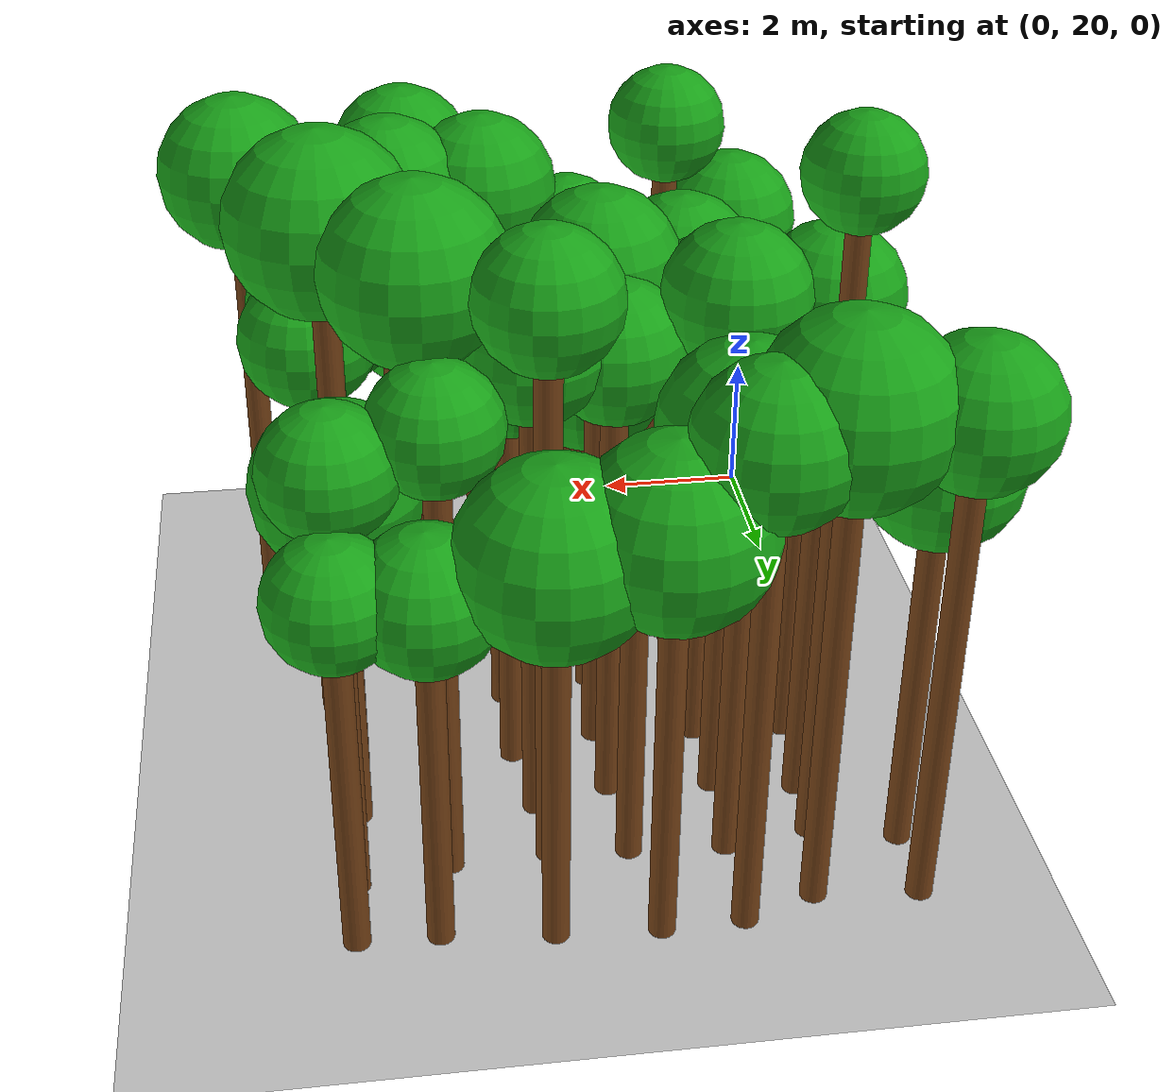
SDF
<sdf version="1.6">
 <world name="forest_world">
  <include><uri>model://sun</uri></include>
  <include><uri>model://ground_plane</uri></include>
  <model name="tree_1520_trunk">
   <static>true</static>
   <pose>-0.25 23.83 2.27 0 0 0</pose>
   <link name="link">
    <collision name="collision">
     <geometry><cylinder><radius>0.16</radius><length>4.54</length></cylinder></geometry>
    </collision>
    <visual name="visual">
     <geometry><cylinder><radius>0.16</radius><length>4.54</length></cylinder></geometry>
     <material><ambient>0.35 0.20 0.05 1</ambient><diffuse>0.45 0.25 0.08 1</diffuse></material>
    </visual>
   </link>
  </model>
  <model name="tree_1520_leaf">
   <static>true</static>
   <pose>-0.25 23.83 5.12 0 0 0</pose>
   <link name="link">
    <collision name="collision"><geometry><sphere><radius>0.97</radius></sphere></geometry></collision>
    <visual name="visual">
     <geometry><sphere><radius>0.97</radius></sphere></geometry>
     <material><ambient>0.05 0.45 0.05 1</ambient><diffuse>0.10 0.65 0.10 1</diffuse></material>
    </visual>
   </link>
  </model>
  <model name="tree_1521_trunk">
   <static>true</static>
   <pose>-0.15 25.05 3.43 0 0 0</pose>
   <link name="link">
    <collision name="collision">
     <geometry><cylinder><radius>0.16</radius><length>6.85</length></cylinder></geometry>
    </collision>
    <visual name="visual">
     <geometry><cylinder><radius>0.16</radius><length>6.85</length></cylinder></geometry>
     <material><ambient>0.35 0.20 0.05 1</ambient><diffuse>0.45 0.25 0.08 1</diffuse></material>
    </visual>
   </link>
  </model>
  <model name="tree_1521_leaf">
   <static>true</static>
   <pose>-0.15 25.05 7.30 0 0 0</pose>
   <link name="link">
    <collision name="collision"><geometry><sphere><radius>0.75</radius></sphere></geometry></collision>
    <visual name="visual">
     <geometry><sphere><radius>0.75</radius></sphere></geometry>
     <material><ambient>0.05 0.45 0.05 1</ambient><diffuse>0.10 0.65 0.10 1</diffuse></material>
    </visual>
   </link>
  </model>
  <model name="tree_1524_trunk">
   <static>true</static>
   <pose>-0.28 28.40 2.36 0 0 0</pose>
   <link name="link">
    <collision name="collision">
     <geometry><cylinder><radius>0.16</radius><length>4.73</length></cylinder></geometry>
    </collision>
    <visual name="visual">
     <geometry><cylinder><radius>0.16</radius><length>4.73</length></cylinder></geometry>
     <material><ambient>0.35 0.20 0.05 1</ambient><diffuse>0.45 0.25 0.08 1</diffuse></material>
    </visual>
   </link>
  </model>
  <model name="tree_1524_leaf">
   <static>true</static>
   <pose>-0.28 28.40 5.29 0 0 0</pose>
   <link name="link">
    <collision name="collision"><geometry><sphere><radius>0.94</radius></sphere></geometry></collision>
    <visual name="visual">
     <geometry><sphere><radius>0.94</radius></sphere></geometry>
     <material><ambient>0.05 0.45 0.05 1</ambient><diffuse>0.10 0.65 0.10 1</diffuse></material>
    </visual>
   </link>
  </model>
  <model name="tree_1525_trunk">
   <static>true</static>
   <pose>-0.27 29.36 2.99 0 0 0</pose>
   <link name="link">
    <collision name="collision">
     <geometry><cylinder><radius>0.16</radius><length>5.98</length></cylinder></geometry>
    </collision>
    <visual name="visual">
     <geometry><cylinder><radius>0.16</radius><length>5.98</length></cylinder></geometry>
     <material><ambient>0.35 0.20 0.05 1</ambient><diffuse>0.45 0.25 0.08 1</diffuse></material>
    </visual>
   </link>
  </model>
  <model name="tree_1525_leaf">
   <static>true</static>
   <pose>-0.27 29.36 6.50 0 0 0</pose>
   <link name="link">
    <collision name="collision"><geometry><sphere><radius>0.87</radius></sphere></geometry></collision>
    <visual name="visual">
     <geometry><sphere><radius>0.87</radius></sphere></geometry>
     <material><ambient>0.05 0.45 0.05 1</ambient><diffuse>0.10 0.65 0.10 1</diffuse></material>
    </visual>
   </link>
  </model>
  <model name="tree_1569_trunk">
   <static>true</static>
   <pose>0.92 22.74 2.63 0 0 0</pose>
   <link name="link">
    <collision name="collision">
     <geometry><cylinder><radius>0.16</radius><length>5.27</length></cylinder></geometry>
    </collision>
    <visual name="visual">
     <geometry><cylinder><radius>0.16</radius><length>5.27</length></cylinder></geometry>
     <material><ambient>0.35 0.20 0.05 1</ambient><diffuse>0.45 0.25 0.08 1</diffuse></material>
    </visual>
   </link>
  </model>
  <model name="tree_1569_leaf">
   <static>true</static>
   <pose>0.92 22.74 5.79 0 0 0</pose>
   <link name="link">
    <collision name="collision"><geometry><sphere><radius>0.87</radius></sphere></geometry></collision>
    <visual name="visual">
     <geometry><sphere><radius>0.87</radius></sphere></geometry>
     <material><ambient>0.05 0.45 0.05 1</ambient><diffuse>0.10 0.65 0.10 1</diffuse></material>
    </visual>
   </link>
  </model>
  <model name="tree_1570_trunk">
   <static>true</static>
   <pose>0.80 23.72 2.26 0 0 0</pose>
   <link name="link">
    <collision name="collision">
     <geometry><cylinder><radius>0.16</radius><length>4.52</length></cylinder></geometry>
    </collision>
    <visual name="visual">
     <geometry><cylinder><radius>0.16</radius><length>4.52</length></cylinder></geometry>
     <material><ambient>0.35 0.20 0.05 1</ambient><diffuse>0.45 0.25 0.08 1</diffuse></material>
    </visual>
   </link>
  </model>
  <model name="tree_1570_leaf">
   <static>true</static>
   <pose>0.80 23.72 4.98 0 0 0</pose>
   <link name="link">
    <collision name="collision"><geometry><sphere><radius>0.77</radius></sphere></geometry></collision>
    <visual name="visual">
     <geometry><sphere><radius>0.77</radius></sphere></geometry>
     <material><ambient>0.05 0.45 0.05 1</ambient><diffuse>0.10 0.65 0.10 1</diffuse></material>
    </visual>
   </link>
  </model>
  <model name="tree_1571_trunk">
   <static>true</static>
   <pose>0.74 25.06 2.15 0 0 0</pose>
   <link name="link">
    <collision name="collision">
     <geometry><cylinder><radius>0.16</radius><length>4.30</length></cylinder></geometry>
    </collision>
    <visual name="visual">
     <geometry><cylinder><radius>0.16</radius><length>4.30</length></cylinder></geometry>
     <material><ambient>0.35 0.20 0.05 1</ambient><diffuse>0.45 0.25 0.08 1</diffuse></material>
    </visual>
   </link>
  </model>
  <model name="tree_1571_leaf">
   <static>true</static>
   <pose>0.74 25.06 4.75 0 0 0</pose>
   <link name="link">
    <collision name="collision"><geometry><sphere><radius>0.75</radius></sphere></geometry></collision>
    <visual name="visual">
     <geometry><sphere><radius>0.75</radius></sphere></geometry>
     <material><ambient>0.05 0.45 0.05 1</ambient><diffuse>0.10 0.65 0.10 1</diffuse></material>
    </visual>
   </link>
  </model>
  <model name="tree_1572_trunk">
   <static>true</static>
   <pose>0.65 26.18 2.03 0 0 0</pose>
   <link name="link">
    <collision name="collision">
     <geometry><cylinder><radius>0.16</radius><length>4.07</length></cylinder></geometry>
    </collision>
    <visual name="visual">
     <geometry><cylinder><radius>0.16</radius><length>4.07</length></cylinder></geometry>
     <material><ambient>0.35 0.20 0.05 1</ambient><diffuse>0.45 0.25 0.08 1</diffuse></material>
    </visual>
   </link>
  </model>
  <model name="tree_1572_leaf">
   <static>true</static>
   <pose>0.65 26.18 4.58 0 0 0</pose>
   <link name="link">
    <collision name="collision"><geometry><sphere><radius>0.85</radius></sphere></geometry></collision>
    <visual name="visual">
     <geometry><sphere><radius>0.85</radius></sphere></geometry>
     <material><ambient>0.05 0.45 0.05 1</ambient><diffuse>0.10 0.65 0.10 1</diffuse></material>
    </visual>
   </link>
  </model>
  <model name="tree_1573_trunk">
   <static>true</static>
   <pose>0.75 27.35 2.36 0 0 0</pose>
   <link name="link">
    <collision name="collision">
     <geometry><cylinder><radius>0.16</radius><length>4.72</length></cylinder></geometry>
    </collision>
    <visual name="visual">
     <geometry><cylinder><radius>0.16</radius><length>4.72</length></cylinder></geometry>
     <material><ambient>0.35 0.20 0.05 1</ambient><diffuse>0.45 0.25 0.08 1</diffuse></material>
    </visual>
   </link>
  </model>
  <model name="tree_1573_leaf">
   <static>true</static>
   <pose>0.75 27.35 5.25 0 0 0</pose>
   <link name="link">
    <collision name="collision"><geometry><sphere><radius>0.88</radius></sphere></geometry></collision>
    <visual name="visual">
     <geometry><sphere><radius>0.88</radius></sphere></geometry>
     <material><ambient>0.05 0.45 0.05 1</ambient><diffuse>0.10 0.65 0.10 1</diffuse></material>
    </visual>
   </link>
  </model>
  <model name="tree_1574_trunk">
   <static>true</static>
   <pose>0.77 28.15 2.62 0 0 0</pose>
   <link name="link">
    <collision name="collision">
     <geometry><cylinder><radius>0.16</radius><length>5.24</length></cylinder></geometry>
    </collision>
    <visual name="visual">
     <geometry><cylinder><radius>0.16</radius><length>5.24</length></cylinder></geometry>
     <material><ambient>0.35 0.20 0.05 1</ambient><diffuse>0.45 0.25 0.08 1</diffuse></material>
    </visual>
   </link>
  </model>
  <model name="tree_1574_leaf">
   <static>true</static>
   <pose>0.77 28.15 5.72 0 0 0</pose>
   <link name="link">
    <collision name="collision"><geometry><sphere><radius>0.81</radius></sphere></geometry></collision>
    <visual name="visual">
     <geometry><sphere><radius>0.81</radius></sphere></geometry>
     <material><ambient>0.05 0.45 0.05 1</ambient><diffuse>0.10 0.65 0.10 1</diffuse></material>
    </visual>
   </link>
  </model>
  <model name="tree_1575_trunk">
   <static>true</static>
   <pose>0.98 29.25 2.96 0 0 0</pose>
   <link name="link">
    <collision name="collision">
     <geometry><cylinder><radius>0.16</radius><length>5.91</length></cylinder></geometry>
    </collision>
    <visual name="visual">
     <geometry><cylinder><radius>0.16</radius><length>5.91</length></cylinder></geometry>
     <material><ambient>0.35 0.20 0.05 1</ambient><diffuse>0.45 0.25 0.08 1</diffuse></material>
    </visual>
   </link>
  </model>
  <model name="tree_1575_leaf">
   <static>true</static>
   <pose>0.98 29.25 6.57 0 0 0</pose>
   <link name="link">
    <collision name="collision"><geometry><sphere><radius>1.10</radius></sphere></geometry></collision>
    <visual name="visual">
     <geometry><sphere><radius>1.10</radius></sphere></geometry>
     <material><ambient>0.05 0.45 0.05 1</ambient><diffuse>0.10 0.65 0.10 1</diffuse></material>
    </visual>
   </link>
  </model>
  <model name="tree_1620_trunk">
   <static>true</static>
   <pose>1.79 22.81 3.34 0 0 0</pose>
   <link name="link">
    <collision name="collision">
     <geometry><cylinder><radius>0.16</radius><length>6.69</length></cylinder></geometry>
    </collision>
    <visual name="visual">
     <geometry><cylinder><radius>0.16</radius><length>6.69</length></cylinder></geometry>
     <material><ambient>0.35 0.20 0.05 1</ambient><diffuse>0.45 0.25 0.08 1</diffuse></material>
    </visual>
   </link>
  </model>
  <model name="tree_1620_leaf">
   <static>true</static>
   <pose>1.79 22.81 7.13 0 0 0</pose>
   <link name="link">
    <collision name="collision"><geometry><sphere><radius>0.74</radius></sphere></geometry></collision>
    <visual name="visual">
     <geometry><sphere><radius>0.74</radius></sphere></geometry>
     <material><ambient>0.05 0.45 0.05 1</ambient><diffuse>0.10 0.65 0.10 1</diffuse></material>
    </visual>
   </link>
  </model>
  <model name="tree_1621_trunk">
   <static>true</static>
   <pose>1.77 24.03 2.60 0 0 0</pose>
   <link name="link">
    <collision name="collision">
     <geometry><cylinder><radius>0.16</radius><length>5.20</length></cylinder></geometry>
    </collision>
    <visual name="visual">
     <geometry><cylinder><radius>0.16</radius><length>5.20</length></cylinder></geometry>
     <material><ambient>0.35 0.20 0.05 1</ambient><diffuse>0.45 0.25 0.08 1</diffuse></material>
    </visual>
   </link>
  </model>
  <model name="tree_1621_leaf">
   <static>true</static>
   <pose>1.77 24.03 5.75 0 0 0</pose>
   <link name="link">
    <collision name="collision"><geometry><sphere><radius>0.93</radius></sphere></geometry></collision>
    <visual name="visual">
     <geometry><sphere><radius>0.93</radius></sphere></geometry>
     <material><ambient>0.05 0.45 0.05 1</ambient><diffuse>0.10 0.65 0.10 1</diffuse></material>
    </visual>
   </link>
  </model>
  <model name="tree_1622_trunk">
   <static>true</static>
   <pose>1.85 24.83 2.44 0 0 0</pose>
   <link name="link">
    <collision name="collision">
     <geometry><cylinder><radius>0.16</radius><length>4.88</length></cylinder></geometry>
    </collision>
    <visual name="visual">
     <geometry><cylinder><radius>0.16</radius><length>4.88</length></cylinder></geometry>
     <material><ambient>0.35 0.20 0.05 1</ambient><diffuse>0.45 0.25 0.08 1</diffuse></material>
    </visual>
   </link>
  </model>
  <model name="tree_1622_leaf">
   <static>true</static>
   <pose>1.85 24.83 5.46 0 0 0</pose>
   <link name="link">
    <collision name="collision"><geometry><sphere><radius>0.96</radius></sphere></geometry></collision>
    <visual name="visual">
     <geometry><sphere><radius>0.96</radius></sphere></geometry>
     <material><ambient>0.05 0.45 0.05 1</ambient><diffuse>0.10 0.65 0.10 1</diffuse></material>
    </visual>
   </link>
  </model>
  <model name="tree_1623_trunk">
   <static>true</static>
   <pose>1.82 26.11 2.84 0 0 0</pose>
   <link name="link">
    <collision name="collision">
     <geometry><cylinder><radius>0.16</radius><length>5.68</length></cylinder></geometry>
    </collision>
    <visual name="visual">
     <geometry><cylinder><radius>0.16</radius><length>5.68</length></cylinder></geometry>
     <material><ambient>0.35 0.20 0.05 1</ambient><diffuse>0.45 0.25 0.08 1</diffuse></material>
    </visual>
   </link>
  </model>
  <model name="tree_1623_leaf">
   <static>true</static>
   <pose>1.82 26.11 6.19 0 0 0</pose>
   <link name="link">
    <collision name="collision"><geometry><sphere><radius>0.86</radius></sphere></geometry></collision>
    <visual name="visual">
     <geometry><sphere><radius>0.86</radius></sphere></geometry>
     <material><ambient>0.05 0.45 0.05 1</ambient><diffuse>0.10 0.65 0.10 1</diffuse></material>
    </visual>
   </link>
  </model>
  <model name="tree_1624_trunk">
   <static>true</static>
   <pose>1.79 27.16 3.18 0 0 0</pose>
   <link name="link">
    <collision name="collision">
     <geometry><cylinder><radius>0.16</radius><length>6.36</length></cylinder></geometry>
    </collision>
    <visual name="visual">
     <geometry><cylinder><radius>0.16</radius><length>6.36</length></cylinder></geometry>
     <material><ambient>0.35 0.20 0.05 1</ambient><diffuse>0.45 0.25 0.08 1</diffuse></material>
    </visual>
   </link>
  </model>
  <model name="tree_1624_leaf">
   <static>true</static>
   <pose>1.79 27.16 6.86 0 0 0</pose>
   <link name="link">
    <collision name="collision"><geometry><sphere><radius>0.84</radius></sphere></geometry></collision>
    <visual name="visual">
     <geometry><sphere><radius>0.84</radius></sphere></geometry>
     <material><ambient>0.05 0.45 0.05 1</ambient><diffuse>0.10 0.65 0.10 1</diffuse></material>
    </visual>
   </link>
  </model>
  <model name="tree_1625_trunk">
   <static>true</static>
   <pose>1.84 28.31 2.63 0 0 0</pose>
   <link name="link">
    <collision name="collision">
     <geometry><cylinder><radius>0.16</radius><length>5.26</length></cylinder></geometry>
    </collision>
    <visual name="visual">
     <geometry><cylinder><radius>0.16</radius><length>5.26</length></cylinder></geometry>
     <material><ambient>0.35 0.20 0.05 1</ambient><diffuse>0.45 0.25 0.08 1</diffuse></material>
    </visual>
   </link>
  </model>
  <model name="tree_1625_leaf">
   <static>true</static>
   <pose>1.84 28.31 5.87 0 0 0</pose>
   <link name="link">
    <collision name="collision"><geometry><sphere><radius>1.03</radius></sphere></geometry></collision>
    <visual name="visual">
     <geometry><sphere><radius>1.03</radius></sphere></geometry>
     <material><ambient>0.05 0.45 0.05 1</ambient><diffuse>0.10 0.65 0.10 1</diffuse></material>
    </visual>
   </link>
  </model>
  <model name="tree_1626_trunk">
   <static>true</static>
   <pose>1.86 29.54 2.92 0 0 0</pose>
   <link name="link">
    <collision name="collision">
     <geometry><cylinder><radius>0.16</radius><length>5.85</length></cylinder></geometry>
    </collision>
    <visual name="visual">
     <geometry><cylinder><radius>0.16</radius><length>5.85</length></cylinder></geometry>
     <material><ambient>0.35 0.20 0.05 1</ambient><diffuse>0.45 0.25 0.08 1</diffuse></material>
    </visual>
   </link>
  </model>
  <model name="tree_1626_leaf">
   <static>true</static>
   <pose>1.86 29.54 6.40 0 0 0</pose>
   <link name="link">
    <collision name="collision"><geometry><sphere><radius>0.92</radius></sphere></geometry></collision>
    <visual name="visual">
     <geometry><sphere><radius>0.92</radius></sphere></geometry>
     <material><ambient>0.05 0.45 0.05 1</ambient><diffuse>0.10 0.65 0.10 1</diffuse></material>
    </visual>
   </link>
  </model>
  <model name="tree_1674_trunk">
   <static>true</static>
   <pose>2.87 21.64 2.06 0 0 0</pose>
   <link name="link">
    <collision name="collision">
     <geometry><cylinder><radius>0.16</radius><length>4.12</length></cylinder></geometry>
    </collision>
    <visual name="visual">
     <geometry><cylinder><radius>0.16</radius><length>4.12</length></cylinder></geometry>
     <material><ambient>0.35 0.20 0.05 1</ambient><diffuse>0.45 0.25 0.08 1</diffuse></material>
    </visual>
   </link>
  </model>
  <model name="tree_1674_leaf">
   <static>true</static>
   <pose>2.87 21.64 4.61 0 0 0</pose>
   <link name="link">
    <collision name="collision"><geometry><sphere><radius>0.82</radius></sphere></geometry></collision>
    <visual name="visual">
     <geometry><sphere><radius>0.82</radius></sphere></geometry>
     <material><ambient>0.05 0.45 0.05 1</ambient><diffuse>0.10 0.65 0.10 1</diffuse></material>
    </visual>
   </link>
  </model>
  <model name="tree_1675_trunk">
   <static>true</static>
   <pose>3.07 22.94 2.70 0 0 0</pose>
   <link name="link">
    <collision name="collision">
     <geometry><cylinder><radius>0.16</radius><length>5.40</length></cylinder></geometry>
    </collision>
    <visual name="visual">
     <geometry><cylinder><radius>0.16</radius><length>5.40</length></cylinder></geometry>
     <material><ambient>0.35 0.20 0.05 1</ambient><diffuse>0.45 0.25 0.08 1</diffuse></material>
    </visual>
   </link>
  </model>
  <model name="tree_1675_leaf">
   <static>true</static>
   <pose>3.07 22.94 5.83 0 0 0</pose>
   <link name="link">
    <collision name="collision"><geometry><sphere><radius>0.71</radius></sphere></geometry></collision>
    <visual name="visual">
     <geometry><sphere><radius>0.71</radius></sphere></geometry>
     <material><ambient>0.05 0.45 0.05 1</ambient><diffuse>0.10 0.65 0.10 1</diffuse></material>
    </visual>
   </link>
  </model>
  <model name="tree_1676_trunk">
   <static>true</static>
   <pose>2.94 23.99 2.15 0 0 0</pose>
   <link name="link">
    <collision name="collision">
     <geometry><cylinder><radius>0.16</radius><length>4.29</length></cylinder></geometry>
    </collision>
    <visual name="visual">
     <geometry><cylinder><radius>0.16</radius><length>4.29</length></cylinder></geometry>
     <material><ambient>0.35 0.20 0.05 1</ambient><diffuse>0.45 0.25 0.08 1</diffuse></material>
    </visual>
   </link>
  </model>
  <model name="tree_1676_leaf">
   <static>true</static>
   <pose>2.94 23.99 4.93 0 0 0</pose>
   <link name="link">
    <collision name="collision"><geometry><sphere><radius>1.06</radius></sphere></geometry></collision>
    <visual name="visual">
     <geometry><sphere><radius>1.06</radius></sphere></geometry>
     <material><ambient>0.05 0.45 0.05 1</ambient><diffuse>0.10 0.65 0.10 1</diffuse></material>
    </visual>
   </link>
  </model>
  <model name="tree_1677_trunk">
   <static>true</static>
   <pose>3.03 24.84 2.09 0 0 0</pose>
   <link name="link">
    <collision name="collision">
     <geometry><cylinder><radius>0.16</radius><length>4.17</length></cylinder></geometry>
    </collision>
    <visual name="visual">
     <geometry><cylinder><radius>0.16</radius><length>4.17</length></cylinder></geometry>
     <material><ambient>0.35 0.20 0.05 1</ambient><diffuse>0.45 0.25 0.08 1</diffuse></material>
    </visual>
   </link>
  </model>
  <model name="tree_1677_leaf">
   <static>true</static>
   <pose>3.03 24.84 4.76 0 0 0</pose>
   <link name="link">
    <collision name="collision"><geometry><sphere><radius>0.99</radius></sphere></geometry></collision>
    <visual name="visual">
     <geometry><sphere><radius>0.99</radius></sphere></geometry>
     <material><ambient>0.05 0.45 0.05 1</ambient><diffuse>0.10 0.65 0.10 1</diffuse></material>
    </visual>
   </link>
  </model>
  <model name="tree_1678_trunk">
   <static>true</static>
   <pose>3.11 25.99 3.09 0 0 0</pose>
   <link name="link">
    <collision name="collision">
     <geometry><cylinder><radius>0.16</radius><length>6.18</length></cylinder></geometry>
    </collision>
    <visual name="visual">
     <geometry><cylinder><radius>0.16</radius><length>6.18</length></cylinder></geometry>
     <material><ambient>0.35 0.20 0.05 1</ambient><diffuse>0.45 0.25 0.08 1</diffuse></material>
    </visual>
   </link>
  </model>
  <model name="tree_1678_leaf">
   <static>true</static>
   <pose>3.11 25.99 6.74 0 0 0</pose>
   <link name="link">
    <collision name="collision"><geometry><sphere><radius>0.93</radius></sphere></geometry></collision>
    <visual name="visual">
     <geometry><sphere><radius>0.93</radius></sphere></geometry>
     <material><ambient>0.05 0.45 0.05 1</ambient><diffuse>0.10 0.65 0.10 1</diffuse></material>
    </visual>
   </link>
  </model>
  <model name="tree_1679_trunk">
   <static>true</static>
   <pose>3.09 27.06 2.86 0 0 0</pose>
   <link name="link">
    <collision name="collision">
     <geometry><cylinder><radius>0.16</radius><length>5.72</length></cylinder></geometry>
    </collision>
    <visual name="visual">
     <geometry><cylinder><radius>0.16</radius><length>5.72</length></cylinder></geometry>
     <material><ambient>0.35 0.20 0.05 1</ambient><diffuse>0.45 0.25 0.08 1</diffuse></material>
    </visual>
   </link>
  </model>
  <model name="tree_1679_leaf">
   <static>true</static>
   <pose>3.09 27.06 6.22 0 0 0</pose>
   <link name="link">
    <collision name="collision"><geometry><sphere><radius>0.84</radius></sphere></geometry></collision>
    <visual name="visual">
     <geometry><sphere><radius>0.84</radius></sphere></geometry>
     <material><ambient>0.05 0.45 0.05 1</ambient><diffuse>0.10 0.65 0.10 1</diffuse></material>
    </visual>
   </link>
  </model>
  <model name="tree_1680_trunk">
   <static>true</static>
   <pose>3.01 28.23 2.04 0 0 0</pose>
   <link name="link">
    <collision name="collision">
     <geometry><cylinder><radius>0.16</radius><length>4.08</length></cylinder></geometry>
    </collision>
    <visual name="visual">
     <geometry><cylinder><radius>0.16</radius><length>4.08</length></cylinder></geometry>
     <material><ambient>0.35 0.20 0.05 1</ambient><diffuse>0.45 0.25 0.08 1</diffuse></material>
    </visual>
   </link>
  </model>
  <model name="tree_1680_leaf">
   <static>true</static>
   <pose>3.01 28.23 4.59 0 0 0</pose>
   <link name="link">
    <collision name="collision"><geometry><sphere><radius>0.85</radius></sphere></geometry></collision>
    <visual name="visual">
     <geometry><sphere><radius>0.85</radius></sphere></geometry>
     <material><ambient>0.05 0.45 0.05 1</ambient><diffuse>0.10 0.65 0.10 1</diffuse></material>
    </visual>
   </link>
  </model>
  <model name="tree_1681_trunk">
   <static>true</static>
   <pose>2.84 29.57 2.41 0 0 0</pose>
   <link name="link">
    <collision name="collision">
     <geometry><cylinder><radius>0.16</radius><length>4.83</length></cylinder></geometry>
    </collision>
    <visual name="visual">
     <geometry><cylinder><radius>0.16</radius><length>4.83</length></cylinder></geometry>
     <material><ambient>0.35 0.20 0.05 1</ambient><diffuse>0.45 0.25 0.08 1</diffuse></material>
    </visual>
   </link>
  </model>
  <model name="tree_1681_leaf">
   <static>true</static>
   <pose>2.84 29.57 5.47 0 0 0</pose>
   <link name="link">
    <collision name="collision"><geometry><sphere><radius>1.08</radius></sphere></geometry></collision>
    <visual name="visual">
     <geometry><sphere><radius>1.08</radius></sphere></geometry>
     <material><ambient>0.05 0.45 0.05 1</ambient><diffuse>0.10 0.65 0.10 1</diffuse></material>
    </visual>
   </link>
  </model>
  <model name="tree_1729_trunk">
   <static>true</static>
   <pose>4.21 21.78 2.71 0 0 0</pose>
   <link name="link">
    <collision name="collision">
     <geometry><cylinder><radius>0.16</radius><length>5.43</length></cylinder></geometry>
    </collision>
    <visual name="visual">
     <geometry><cylinder><radius>0.16</radius><length>5.43</length></cylinder></geometry>
     <material><ambient>0.35 0.20 0.05 1</ambient><diffuse>0.45 0.25 0.08 1</diffuse></material>
    </visual>
   </link>
  </model>
  <model name="tree_1729_leaf">
   <static>true</static>
   <pose>4.21 21.78 5.89 0 0 0</pose>
   <link name="link">
    <collision name="collision"><geometry><sphere><radius>0.78</radius></sphere></geometry></collision>
    <visual name="visual">
     <geometry><sphere><radius>0.78</radius></sphere></geometry>
     <material><ambient>0.05 0.45 0.05 1</ambient><diffuse>0.10 0.65 0.10 1</diffuse></material>
    </visual>
   </link>
  </model>
  <model name="tree_1730_trunk">
   <static>true</static>
   <pose>3.97 22.81 2.77 0 0 0</pose>
   <link name="link">
    <collision name="collision">
     <geometry><cylinder><radius>0.16</radius><length>5.54</length></cylinder></geometry>
    </collision>
    <visual name="visual">
     <geometry><cylinder><radius>0.16</radius><length>5.54</length></cylinder></geometry>
     <material><ambient>0.35 0.20 0.05 1</ambient><diffuse>0.45 0.25 0.08 1</diffuse></material>
    </visual>
   </link>
  </model>
  <model name="tree_1730_leaf">
   <static>true</static>
   <pose>3.97 22.81 6.04 0 0 0</pose>
   <link name="link">
    <collision name="collision"><geometry><sphere><radius>0.84</radius></sphere></geometry></collision>
    <visual name="visual">
     <geometry><sphere><radius>0.84</radius></sphere></geometry>
     <material><ambient>0.05 0.45 0.05 1</ambient><diffuse>0.10 0.65 0.10 1</diffuse></material>
    </visual>
   </link>
  </model>
  <model name="tree_1731_trunk">
   <static>true</static>
   <pose>4.23 23.73 3.13 0 0 0</pose>
   <link name="link">
    <collision name="collision">
     <geometry><cylinder><radius>0.16</radius><length>6.26</length></cylinder></geometry>
    </collision>
    <visual name="visual">
     <geometry><cylinder><radius>0.16</radius><length>6.26</length></cylinder></geometry>
     <material><ambient>0.35 0.20 0.05 1</ambient><diffuse>0.45 0.25 0.08 1</diffuse></material>
    </visual>
   </link>
  </model>
  <model name="tree_1731_leaf">
   <static>true</static>
   <pose>4.23 23.73 6.81 0 0 0</pose>
   <link name="link">
    <collision name="collision"><geometry><sphere><radius>0.91</radius></sphere></geometry></collision>
    <visual name="visual">
     <geometry><sphere><radius>0.91</radius></sphere></geometry>
     <material><ambient>0.05 0.45 0.05 1</ambient><diffuse>0.10 0.65 0.10 1</diffuse></material>
    </visual>
   </link>
  </model>
  <model name="tree_1732_trunk">
   <static>true</static>
   <pose>4.19 25.06 2.70 0 0 0</pose>
   <link name="link">
    <collision name="collision">
     <geometry><cylinder><radius>0.16</radius><length>5.39</length></cylinder></geometry>
    </collision>
    <visual name="visual">
     <geometry><cylinder><radius>0.16</radius><length>5.39</length></cylinder></geometry>
     <material><ambient>0.35 0.20 0.05 1</ambient><diffuse>0.45 0.25 0.08 1</diffuse></material>
    </visual>
   </link>
  </model>
  <model name="tree_1732_leaf">
   <static>true</static>
   <pose>4.19 25.06 5.88 0 0 0</pose>
   <link name="link">
    <collision name="collision"><geometry><sphere><radius>0.82</radius></sphere></geometry></collision>
    <visual name="visual">
     <geometry><sphere><radius>0.82</radius></sphere></geometry>
     <material><ambient>0.05 0.45 0.05 1</ambient><diffuse>0.10 0.65 0.10 1</diffuse></material>
    </visual>
   </link>
  </model>
  <model name="tree_1733_trunk">
   <static>true</static>
   <pose>4.20 26.26 2.58 0 0 0</pose>
   <link name="link">
    <collision name="collision">
     <geometry><cylinder><radius>0.16</radius><length>5.17</length></cylinder></geometry>
    </collision>
    <visual name="visual">
     <geometry><cylinder><radius>0.16</radius><length>5.17</length></cylinder></geometry>
     <material><ambient>0.35 0.20 0.05 1</ambient><diffuse>0.45 0.25 0.08 1</diffuse></material>
    </visual>
   </link>
  </model>
  <model name="tree_1733_leaf">
   <static>true</static>
   <pose>4.20 26.26 5.66 0 0 0</pose>
   <link name="link">
    <collision name="collision"><geometry><sphere><radius>0.82</radius></sphere></geometry></collision>
    <visual name="visual">
     <geometry><sphere><radius>0.82</radius></sphere></geometry>
     <material><ambient>0.05 0.45 0.05 1</ambient><diffuse>0.10 0.65 0.10 1</diffuse></material>
    </visual>
   </link>
  </model>
  <model name="tree_1734_trunk">
   <static>true</static>
   <pose>4.03 27.29 2.96 0 0 0</pose>
   <link name="link">
    <collision name="collision">
     <geometry><cylinder><radius>0.16</radius><length>5.93</length></cylinder></geometry>
    </collision>
    <visual name="visual">
     <geometry><cylinder><radius>0.16</radius><length>5.93</length></cylinder></geometry>
     <material><ambient>0.35 0.20 0.05 1</ambient><diffuse>0.45 0.25 0.08 1</diffuse></material>
    </visual>
   </link>
  </model>
  <model name="tree_1734_leaf">
   <static>true</static>
   <pose>4.03 27.29 6.43 0 0 0</pose>
   <link name="link">
    <collision name="collision"><geometry><sphere><radius>0.85</radius></sphere></geometry></collision>
    <visual name="visual">
     <geometry><sphere><radius>0.85</radius></sphere></geometry>
     <material><ambient>0.05 0.45 0.05 1</ambient><diffuse>0.10 0.65 0.10 1</diffuse></material>
    </visual>
   </link>
  </model>
  <model name="tree_1735_trunk">
   <static>true</static>
   <pose>3.97 28.17 3.48 0 0 0</pose>
   <link name="link">
    <collision name="collision">
     <geometry><cylinder><radius>0.16</radius><length>6.95</length></cylinder></geometry>
    </collision>
    <visual name="visual">
     <geometry><cylinder><radius>0.16</radius><length>6.95</length></cylinder></geometry>
     <material><ambient>0.35 0.20 0.05 1</ambient><diffuse>0.45 0.25 0.08 1</diffuse></material>
    </visual>
   </link>
  </model>
  <model name="tree_1735_leaf">
   <static>true</static>
   <pose>3.97 28.17 7.44 0 0 0</pose>
   <link name="link">
    <collision name="collision"><geometry><sphere><radius>0.81</radius></sphere></geometry></collision>
    <visual name="visual">
     <geometry><sphere><radius>0.81</radius></sphere></geometry>
     <material><ambient>0.05 0.45 0.05 1</ambient><diffuse>0.10 0.65 0.10 1</diffuse></material>
    </visual>
   </link>
  </model>
  <model name="tree_1736_trunk">
   <static>true</static>
   <pose>4.06 29.50 2.27 0 0 0</pose>
   <link name="link">
    <collision name="collision">
     <geometry><cylinder><radius>0.16</radius><length>4.55</length></cylinder></geometry>
    </collision>
    <visual name="visual">
     <geometry><cylinder><radius>0.16</radius><length>4.55</length></cylinder></geometry>
     <material><ambient>0.35 0.20 0.05 1</ambient><diffuse>0.45 0.25 0.08 1</diffuse></material>
    </visual>
   </link>
  </model>
  <model name="tree_1736_leaf">
   <static>true</static>
   <pose>4.06 29.50 5.21 0 0 0</pose>
   <link name="link">
    <collision name="collision"><geometry><sphere><radius>1.10</radius></sphere></geometry></collision>
    <visual name="visual">
     <geometry><sphere><radius>1.10</radius></sphere></geometry>
     <material><ambient>0.05 0.45 0.05 1</ambient><diffuse>0.10 0.65 0.10 1</diffuse></material>
    </visual>
   </link>
  </model>
  <model name="tree_1784_trunk">
   <static>true</static>
   <pose>5.09 21.74 2.95 0 0 0</pose>
   <link name="link">
    <collision name="collision">
     <geometry><cylinder><radius>0.16</radius><length>5.91</length></cylinder></geometry>
    </collision>
    <visual name="visual">
     <geometry><cylinder><radius>0.16</radius><length>5.91</length></cylinder></geometry>
     <material><ambient>0.35 0.20 0.05 1</ambient><diffuse>0.45 0.25 0.08 1</diffuse></material>
    </visual>
   </link>
  </model>
  <model name="tree_1784_leaf">
   <static>true</static>
   <pose>5.09 21.74 6.46 0 0 0</pose>
   <link name="link">
    <collision name="collision"><geometry><sphere><radius>0.92</radius></sphere></geometry></collision>
    <visual name="visual">
     <geometry><sphere><radius>0.92</radius></sphere></geometry>
     <material><ambient>0.05 0.45 0.05 1</ambient><diffuse>0.10 0.65 0.10 1</diffuse></material>
    </visual>
   </link>
  </model>
  <model name="tree_1785_trunk">
   <static>true</static>
   <pose>5.11 22.98 2.07 0 0 0</pose>
   <link name="link">
    <collision name="collision">
     <geometry><cylinder><radius>0.16</radius><length>4.14</length></cylinder></geometry>
    </collision>
    <visual name="visual">
     <geometry><cylinder><radius>0.16</radius><length>4.14</length></cylinder></geometry>
     <material><ambient>0.35 0.20 0.05 1</ambient><diffuse>0.45 0.25 0.08 1</diffuse></material>
    </visual>
   </link>
  </model>
  <model name="tree_1785_leaf">
   <static>true</static>
   <pose>5.11 22.98 4.64 0 0 0</pose>
   <link name="link">
    <collision name="collision"><geometry><sphere><radius>0.83</radius></sphere></geometry></collision>
    <visual name="visual">
     <geometry><sphere><radius>0.83</radius></sphere></geometry>
     <material><ambient>0.05 0.45 0.05 1</ambient><diffuse>0.10 0.65 0.10 1</diffuse></material>
    </visual>
   </link>
  </model>
  <model name="tree_1786_trunk">
   <static>true</static>
   <pose>5.37 23.92 3.14 0 0 0</pose>
   <link name="link">
    <collision name="collision">
     <geometry><cylinder><radius>0.16</radius><length>6.29</length></cylinder></geometry>
    </collision>
    <visual name="visual">
     <geometry><cylinder><radius>0.16</radius><length>6.29</length></cylinder></geometry>
     <material><ambient>0.35 0.20 0.05 1</ambient><diffuse>0.45 0.25 0.08 1</diffuse></material>
    </visual>
   </link>
  </model>
  <model name="tree_1786_leaf">
   <static>true</static>
   <pose>5.37 23.92 6.86 0 0 0</pose>
   <link name="link">
    <collision name="collision"><geometry><sphere><radius>0.95</radius></sphere></geometry></collision>
    <visual name="visual">
     <geometry><sphere><radius>0.95</radius></sphere></geometry>
     <material><ambient>0.05 0.45 0.05 1</ambient><diffuse>0.10 0.65 0.10 1</diffuse></material>
    </visual>
   </link>
  </model>
  <model name="tree_1787_trunk">
   <static>true</static>
   <pose>5.02 24.86 2.78 0 0 0</pose>
   <link name="link">
    <collision name="collision">
     <geometry><cylinder><radius>0.16</radius><length>5.55</length></cylinder></geometry>
    </collision>
    <visual name="visual">
     <geometry><cylinder><radius>0.16</radius><length>5.55</length></cylinder></geometry>
     <material><ambient>0.35 0.20 0.05 1</ambient><diffuse>0.45 0.25 0.08 1</diffuse></material>
    </visual>
   </link>
  </model>
  <model name="tree_1787_leaf">
   <static>true</static>
   <pose>5.02 24.86 6.13 0 0 0</pose>
   <link name="link">
    <collision name="collision"><geometry><sphere><radius>0.96</radius></sphere></geometry></collision>
    <visual name="visual">
     <geometry><sphere><radius>0.96</radius></sphere></geometry>
     <material><ambient>0.05 0.45 0.05 1</ambient><diffuse>0.10 0.65 0.10 1</diffuse></material>
    </visual>
   </link>
  </model>
  <model name="tree_1788_trunk">
   <static>true</static>
   <pose>5.18 26.23 3.16 0 0 0</pose>
   <link name="link">
    <collision name="collision">
     <geometry><cylinder><radius>0.16</radius><length>6.32</length></cylinder></geometry>
    </collision>
    <visual name="visual">
     <geometry><cylinder><radius>0.16</radius><length>6.32</length></cylinder></geometry>
     <material><ambient>0.35 0.20 0.05 1</ambient><diffuse>0.45 0.25 0.08 1</diffuse></material>
    </visual>
   </link>
  </model>
  <model name="tree_1788_leaf">
   <static>true</static>
   <pose>5.18 26.23 6.80 0 0 0</pose>
   <link name="link">
    <collision name="collision"><geometry><sphere><radius>0.80</radius></sphere></geometry></collision>
    <visual name="visual">
     <geometry><sphere><radius>0.80</radius></sphere></geometry>
     <material><ambient>0.05 0.45 0.05 1</ambient><diffuse>0.10 0.65 0.10 1</diffuse></material>
    </visual>
   </link>
  </model>
  <model name="tree_1789_trunk">
   <static>true</static>
   <pose>5.25 27.21 3.37 0 0 0</pose>
   <link name="link">
    <collision name="collision">
     <geometry><cylinder><radius>0.16</radius><length>6.75</length></cylinder></geometry>
    </collision>
    <visual name="visual">
     <geometry><cylinder><radius>0.16</radius><length>6.75</length></cylinder></geometry>
     <material><ambient>0.35 0.20 0.05 1</ambient><diffuse>0.45 0.25 0.08 1</diffuse></material>
    </visual>
   </link>
  </model>
  <model name="tree_1789_leaf">
   <static>true</static>
   <pose>5.25 27.21 7.37 0 0 0</pose>
   <link name="link">
    <collision name="collision"><geometry><sphere><radius>1.05</radius></sphere></geometry></collision>
    <visual name="visual">
     <geometry><sphere><radius>1.05</radius></sphere></geometry>
     <material><ambient>0.05 0.45 0.05 1</ambient><diffuse>0.10 0.65 0.10 1</diffuse></material>
    </visual>
   </link>
  </model>
  <model name="tree_1790_trunk">
   <static>true</static>
   <pose>5.16 28.21 2.80 0 0 0</pose>
   <link name="link">
    <collision name="collision">
     <geometry><cylinder><radius>0.16</radius><length>5.60</length></cylinder></geometry>
    </collision>
    <visual name="visual">
     <geometry><cylinder><radius>0.16</radius><length>5.60</length></cylinder></geometry>
     <material><ambient>0.35 0.20 0.05 1</ambient><diffuse>0.45 0.25 0.08 1</diffuse></material>
    </visual>
   </link>
  </model>
  <model name="tree_1790_leaf">
   <static>true</static>
   <pose>5.16 28.21 6.06 0 0 0</pose>
   <link name="link">
    <collision name="collision"><geometry><sphere><radius>0.76</radius></sphere></geometry></collision>
    <visual name="visual">
     <geometry><sphere><radius>0.76</radius></sphere></geometry>
     <material><ambient>0.05 0.45 0.05 1</ambient><diffuse>0.10 0.65 0.10 1</diffuse></material>
    </visual>
   </link>
  </model>
  <model name="tree_1791_trunk">
   <static>true</static>
   <pose>5.37 29.35 2.10 0 0 0</pose>
   <link name="link">
    <collision name="collision">
     <geometry><cylinder><radius>0.16</radius><length>4.21</length></cylinder></geometry>
    </collision>
    <visual name="visual">
     <geometry><cylinder><radius>0.16</radius><length>4.21</length></cylinder></geometry>
     <material><ambient>0.35 0.20 0.05 1</ambient><diffuse>0.45 0.25 0.08 1</diffuse></material>
    </visual>
   </link>
  </model>
  <model name="tree_1791_leaf">
   <static>true</static>
   <pose>5.37 29.35 4.70 0 0 0</pose>
   <link name="link">
    <collision name="collision"><geometry><sphere><radius>0.83</radius></sphere></geometry></collision>
    <visual name="visual">
     <geometry><sphere><radius>0.83</radius></sphere></geometry>
     <material><ambient>0.05 0.45 0.05 1</ambient><diffuse>0.10 0.65 0.10 1</diffuse></material>
    </visual>
   </link>
  </model>
  <model name="tree_1840_trunk">
   <static>true</static>
   <pose>6.39 22.74 2.82 0 0 0</pose>
   <link name="link">
    <collision name="collision">
     <geometry><cylinder><radius>0.16</radius><length>5.64</length></cylinder></geometry>
    </collision>
    <visual name="visual">
     <geometry><cylinder><radius>0.16</radius><length>5.64</length></cylinder></geometry>
     <material><ambient>0.35 0.20 0.05 1</ambient><diffuse>0.45 0.25 0.08 1</diffuse></material>
    </visual>
   </link>
  </model>
  <model name="tree_1840_leaf">
   <static>true</static>
   <pose>6.39 22.74 6.20 0 0 0</pose>
   <link name="link">
    <collision name="collision"><geometry><sphere><radius>0.94</radius></sphere></geometry></collision>
    <visual name="visual">
     <geometry><sphere><radius>0.94</radius></sphere></geometry>
     <material><ambient>0.05 0.45 0.05 1</ambient><diffuse>0.10 0.65 0.10 1</diffuse></material>
    </visual>
   </link>
  </model>
  <model name="tree_1841_trunk">
   <static>true</static>
   <pose>6.16 23.92 2.43 0 0 0</pose>
   <link name="link">
    <collision name="collision">
     <geometry><cylinder><radius>0.16</radius><length>4.86</length></cylinder></geometry>
    </collision>
    <visual name="visual">
     <geometry><cylinder><radius>0.16</radius><length>4.86</length></cylinder></geometry>
     <material><ambient>0.35 0.20 0.05 1</ambient><diffuse>0.45 0.25 0.08 1</diffuse></material>
    </visual>
   </link>
  </model>
  <model name="tree_1841_leaf">
   <static>true</static>
   <pose>6.16 23.92 5.48 0 0 0</pose>
   <link name="link">
    <collision name="collision"><geometry><sphere><radius>1.03</radius></sphere></geometry></collision>
    <visual name="visual">
     <geometry><sphere><radius>1.03</radius></sphere></geometry>
     <material><ambient>0.05 0.45 0.05 1</ambient><diffuse>0.10 0.65 0.10 1</diffuse></material>
    </visual>
   </link>
  </model>
  <model name="tree_1842_trunk">
   <static>true</static>
   <pose>6.44 24.92 2.49 0 0 0</pose>
   <link name="link">
    <collision name="collision">
     <geometry><cylinder><radius>0.16</radius><length>4.97</length></cylinder></geometry>
    </collision>
    <visual name="visual">
     <geometry><cylinder><radius>0.16</radius><length>4.97</length></cylinder></geometry>
     <material><ambient>0.35 0.20 0.05 1</ambient><diffuse>0.45 0.25 0.08 1</diffuse></material>
    </visual>
   </link>
  </model>
  <model name="tree_1842_leaf">
   <static>true</static>
   <pose>6.44 24.92 5.48 0 0 0</pose>
   <link name="link">
    <collision name="collision"><geometry><sphere><radius>0.84</radius></sphere></geometry></collision>
    <visual name="visual">
     <geometry><sphere><radius>0.84</radius></sphere></geometry>
     <material><ambient>0.05 0.45 0.05 1</ambient><diffuse>0.10 0.65 0.10 1</diffuse></material>
    </visual>
   </link>
  </model>
  <model name="tree_1843_trunk">
   <static>true</static>
   <pose>6.20 26.13 3.43 0 0 0</pose>
   <link name="link">
    <collision name="collision">
     <geometry><cylinder><radius>0.16</radius><length>6.85</length></cylinder></geometry>
    </collision>
    <visual name="visual">
     <geometry><cylinder><radius>0.16</radius><length>6.85</length></cylinder></geometry>
     <material><ambient>0.35 0.20 0.05 1</ambient><diffuse>0.45 0.25 0.08 1</diffuse></material>
    </visual>
   </link>
  </model>
  <model name="tree_1843_leaf">
   <static>true</static>
   <pose>6.20 26.13 7.50 0 0 0</pose>
   <link name="link">
    <collision name="collision"><geometry><sphere><radius>1.08</radius></sphere></geometry></collision>
    <visual name="visual">
     <geometry><sphere><radius>1.08</radius></sphere></geometry>
     <material><ambient>0.05 0.45 0.05 1</ambient><diffuse>0.10 0.65 0.10 1</diffuse></material>
    </visual>
   </link>
  </model>
  <model name="tree_1844_trunk">
   <static>true</static>
   <pose>6.21 27.20 2.11 0 0 0</pose>
   <link name="link">
    <collision name="collision">
     <geometry><cylinder><radius>0.16</radius><length>4.22</length></cylinder></geometry>
    </collision>
    <visual name="visual">
     <geometry><cylinder><radius>0.16</radius><length>4.22</length></cylinder></geometry>
     <material><ambient>0.35 0.20 0.05 1</ambient><diffuse>0.45 0.25 0.08 1</diffuse></material>
    </visual>
   </link>
  </model>
  <model name="tree_1844_leaf">
   <static>true</static>
   <pose>6.21 27.20 4.81 0 0 0</pose>
   <link name="link">
    <collision name="collision"><geometry><sphere><radius>1.00</radius></sphere></geometry></collision>
    <visual name="visual">
     <geometry><sphere><radius>1.00</radius></sphere></geometry>
     <material><ambient>0.05 0.45 0.05 1</ambient><diffuse>0.10 0.65 0.10 1</diffuse></material>
    </visual>
   </link>
  </model>
  <model name="tree_1845_trunk">
   <static>true</static>
   <pose>6.29 28.44 2.65 0 0 0</pose>
   <link name="link">
    <collision name="collision">
     <geometry><cylinder><radius>0.16</radius><length>5.29</length></cylinder></geometry>
    </collision>
    <visual name="visual">
     <geometry><cylinder><radius>0.16</radius><length>5.29</length></cylinder></geometry>
     <material><ambient>0.35 0.20 0.05 1</ambient><diffuse>0.45 0.25 0.08 1</diffuse></material>
    </visual>
   </link>
  </model>
  <model name="tree_1845_leaf">
   <static>true</static>
   <pose>6.29 28.44 5.75 0 0 0</pose>
   <link name="link">
    <collision name="collision"><geometry><sphere><radius>0.77</radius></sphere></geometry></collision>
    <visual name="visual">
     <geometry><sphere><radius>0.77</radius></sphere></geometry>
     <material><ambient>0.05 0.45 0.05 1</ambient><diffuse>0.10 0.65 0.10 1</diffuse></material>
    </visual>
   </link>
  </model>
  <model name="tree_1846_trunk">
   <static>true</static>
   <pose>6.33 29.33 2.14 0 0 0</pose>
   <link name="link">
    <collision name="collision">
     <geometry><cylinder><radius>0.16</radius><length>4.29</length></cylinder></geometry>
    </collision>
    <visual name="visual">
     <geometry><cylinder><radius>0.16</radius><length>4.29</length></cylinder></geometry>
     <material><ambient>0.35 0.20 0.05 1</ambient><diffuse>0.45 0.25 0.08 1</diffuse></material>
    </visual>
   </link>
  </model>
  <model name="tree_1846_leaf">
   <static>true</static>
   <pose>6.33 29.33 4.75 0 0 0</pose>
   <link name="link">
    <collision name="collision"><geometry><sphere><radius>0.76</radius></sphere></geometry></collision>
    <visual name="visual">
     <geometry><sphere><radius>0.76</radius></sphere></geometry>
     <material><ambient>0.05 0.45 0.05 1</ambient><diffuse>0.10 0.65 0.10 1</diffuse></material>
    </visual>
   </link>
  </model>
  <model name="tree_1894_trunk">
   <static>true</static>
   <pose>7.23 21.81 2.86 0 0 0</pose>
   <link name="link">
    <collision name="collision">
     <geometry><cylinder><radius>0.16</radius><length>5.73</length></cylinder></geometry>
    </collision>
    <visual name="visual">
     <geometry><cylinder><radius>0.16</radius><length>5.73</length></cylinder></geometry>
     <material><ambient>0.35 0.20 0.05 1</ambient><diffuse>0.45 0.25 0.08 1</diffuse></material>
    </visual>
   </link>
  </model>
  <model name="tree_1894_leaf">
   <static>true</static>
   <pose>7.23 21.81 6.35 0 0 0</pose>
   <link name="link">
    <collision name="collision"><geometry><sphere><radius>1.03</radius></sphere></geometry></collision>
    <visual name="visual">
     <geometry><sphere><radius>1.03</radius></sphere></geometry>
     <material><ambient>0.05 0.45 0.05 1</ambient><diffuse>0.10 0.65 0.10 1</diffuse></material>
    </visual>
   </link>
  </model>
 </world>
</sdf>
